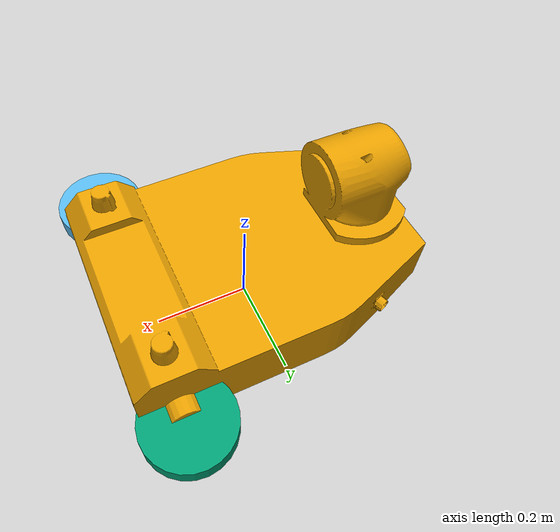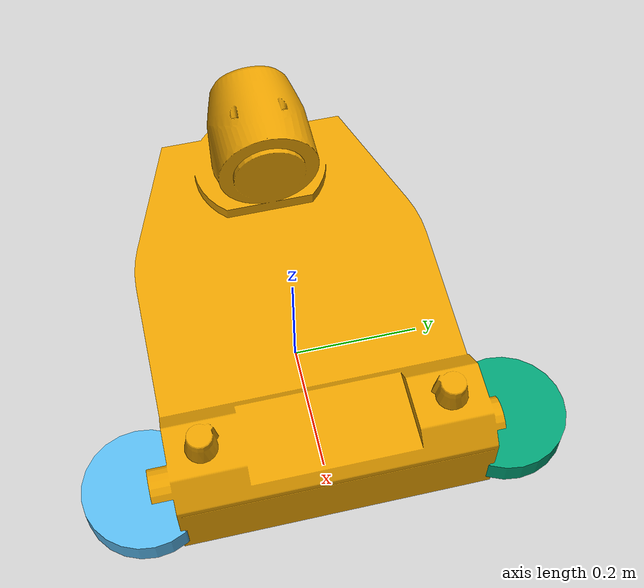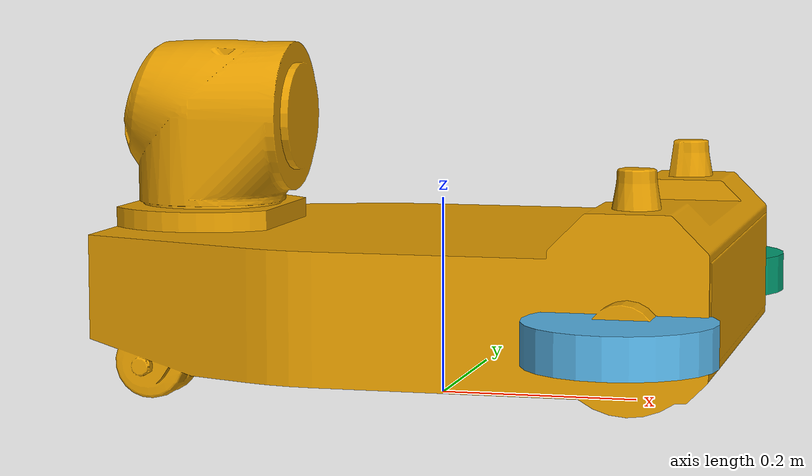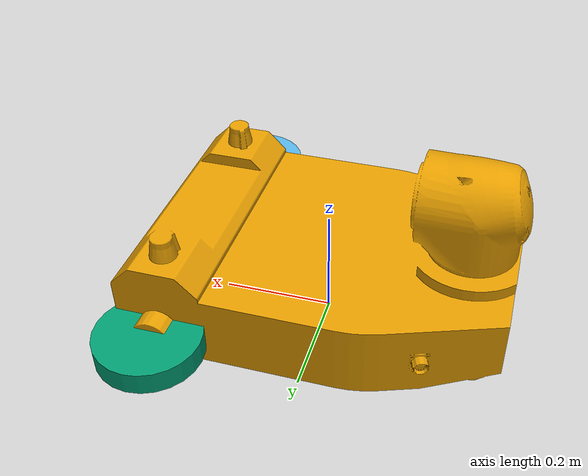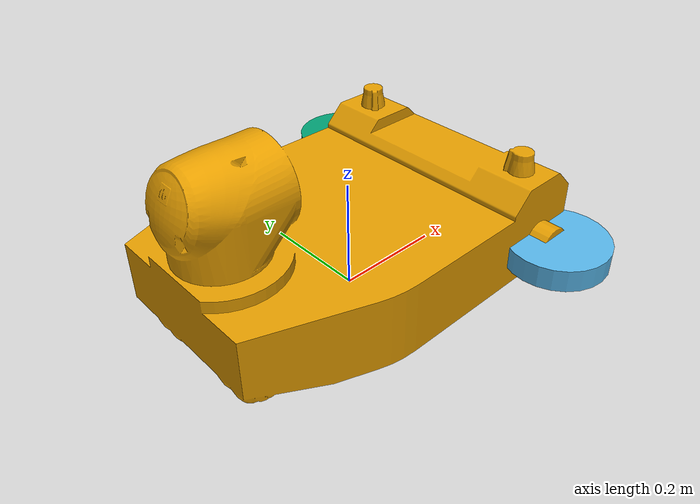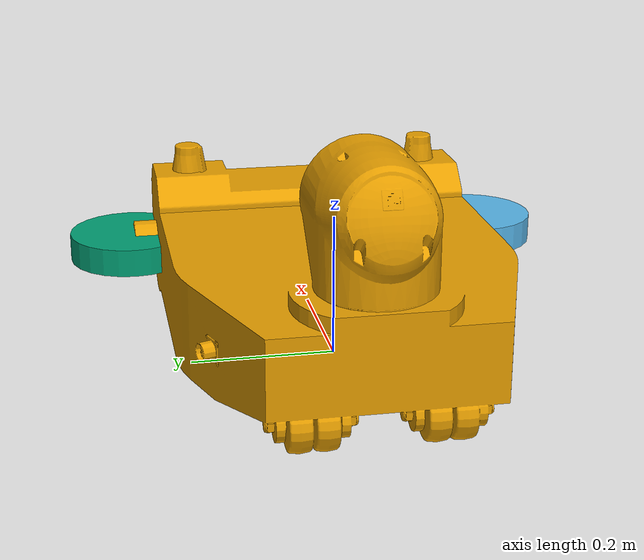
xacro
<?xml version="1.0"?>
<robot xmlns:xacro="http://www.ros.org/wiki/xacro" name="RB_Y1_V1.0.1">

  <!-- Define Properties -->
  <xacro:property name="wheel_radius" value="0.09"/>
  <xacro:property name="wheel_width" value="0.04"/>
  <xacro:property name="wheel_separation" value="0.32"/>
  <xacro:property name="robot_mass" value="60.08"/>
  <xacro:property name="robot_height" value="0.5"/>

  <!-- Base Link -->
  <link name="base_link">
    <inertial>
      <mass value="60.0"/>
      <origin xyz="0 0 0.5" rpy="0 0 0"/>
      <inertia ixx="1.3774" ixy="0.0252" ixz="0.1856"
               iyy="2.9938" iyz="-0.0064" izz="3.7608"/>
    </inertial>
    <visual>
      <geometry>
        <mesh filename="package://warehouse_simulation/meshes/base.dae"/>
      </geometry>
    </visual>
    <collision>
      <geometry>
        <origin xyz="0 0 0.085" rpy="0 0 0"/>
        <geometry>
          <box size="0.5 0.5 0.18"/>
        </geometry>
      </geometry>
    </collision>
  </link>
  <gazebo reference="base_link">
  <material value="Gazebo/Red"/>
  </gazebo>

  <!-- Wheel Macro -->
  <xacro:macro name="wheel" params="wheel_name wheel_x wheel_y">
    <link name="${wheel_name}">
      <inertial>
        <mass value="1.377"/>
        <origin xyz="0 0 0" rpy="0 0 0"/>
        <inertia ixx="0.0042" ixy="0.0" ixz="0.0"
                 iyy="0.0081" iyz="0.0" izz="0.0042"/>
      </inertial>
      <visual>
        <geometry>
          <cylinder radius="${wheel_radius}" length="${wheel_width}"/>
        </geometry>
      </visual>
      <collision>
        <geometry>
          <cylinder radius="${wheel_radius}" length="${wheel_width}"/>
        </geometry>
      </collision>
    </link>

    <joint name="base_to_${wheel_name}" type="continuous">
      <parent link="base_link"/>
      <child link="${wheel_name}"/>
      <origin xyz="${wheel_x} ${wheel_y} 0.1" rpy="0 0 0"/>
      <axis xyz="0 -1 0"/>
    </joint>
  </xacro:macro>

  <!-- Wheels -->
  <xacro:wheel wheel_name="wheel_r" wheel_x="0.228" wheel_y="-0.265"/>
  <xacro:wheel wheel_name="wheel_l" wheel_x="0.228" wheel_y="0.265"/>

  <!-- Additional links and joints will be modularized similarly -->

</robot>
